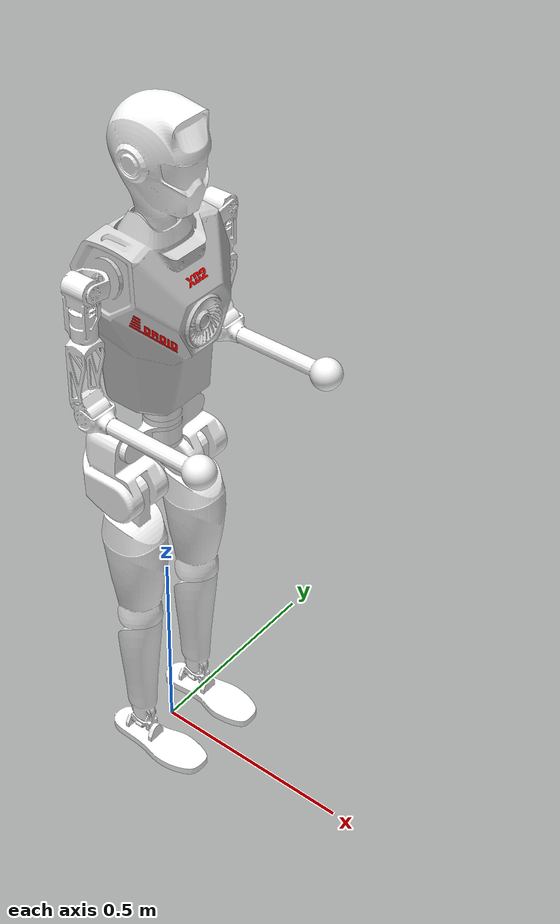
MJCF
<mujoco model="x2">
  <compiler angle="radian" meshdir="./meshes/"/>
  <default>
    <joint damping="0.1" armature="0.01" frictionloss="0.1"/>
  </default>
  <asset>
    <mesh name="pelvis_link" file="pelvis_link.STL"/>
    <mesh name="L_hip_yaw_link" file="L_hip_yaw_link.STL"/>
    <mesh name="L_hip_roll_link" file="L_hip_roll_link.STL"/>
    <mesh name="L_hip_pitch_link" file="L_hip_pitch_link.STL"/>
    <mesh name="L_knee_pitch_link" file="L_knee_pitch_link.STL"/>
    <mesh name="L_ankle_pitch_link" file="L_ankle_pitch_link.STL"/>
    <mesh name="R_hip_yaw_link" file="R_hip_yaw_link.STL"/>
    <mesh name="R_hip_roll_link" file="R_hip_roll_link.STL"/>
    <mesh name="R_hip_pitch_link" file="R_hip_pitch_link.STL"/>
    <mesh name="R_knee_pitch_link" file="R_knee_pitch_link.STL"/>
    <mesh name="R_ankle_pitch_link" file="R_ankle_pitch_link.STL"/>
    <mesh name="waist_yaw_link" file="waist_yaw_link.STL"/>
    <mesh name="torso_link" file="torso_link.STL"/>
    <mesh name="logo_link" file="logo_link.STL"/>
    <mesh name="head_link" file="head_link.STL"/>
    <mesh name="L_shoulder_pitch_link" file="L_shoulder_pitch_link.STL"/>
    <mesh name="L_shoulder_roll_link" file="L_shoulder_roll_link.STL"/>
    <mesh name="L_shoulder_yaw_link" file="L_shoulder_yaw_link.STL"/>
    <mesh name="L_elbow_pitch_link" file="L_elbow_pitch_link.STL"/>
    <mesh name="R_shoulder_pitch_link" file="R_shoulder_pitch_link.STL"/>
    <mesh name="R_shoulder_roll_link" file="R_shoulder_roll_link.STL"/>
    <mesh name="R_shoulder_yaw_link" file="R_shoulder_yaw_link.STL"/>
    <mesh name="R_elbow_pitch_link" file="R_elbow_pitch_link.STL"/>
  </asset>
  <worldbody>
    <light name="spotlight" target="pelvis_link" pos="0 0 2" dir="0 0 -1." cutoff="30" mode="targetbodycom"/>
    <body name="pelvis_link" pos="0 0 0.91">
      <site name="imu"/>
      <inertial pos="-0.000780925 -1.61312e-05 0.320098" quat="0.999982 -6.6303e-05 0.00594371 0.000195653" mass="14.8692" diaginertia="0.548526 0.426111 0.226041"/>
      <joint name="pelvis_link" type="free" limited="false" actuatorfrclimited="false"/>
      <geom type="mesh" contype="0" conaffinity="0" group="1" density="0" rgba="1 1 1 1" mesh="pelvis_link"/>
      <geom type="mesh" rgba="1 1 1 1" mesh="pelvis_link"/>
      <geom pos="0 0 0.08375" type="mesh" contype="0" conaffinity="0" group="1" density="0" rgba="1 1 1 1" mesh="waist_yaw_link"/>
      <geom pos="0 0 0.08375" type="mesh" rgba="1 1 1 1" mesh="waist_yaw_link"/>
      <geom pos="0 0 0.1205" type="mesh" contype="0" conaffinity="0" group="1" density="0" rgba="0.823529 0.823529 0.823529 1" mesh="torso_link"/>
      <geom pos="0 0 0.1205" type="mesh" rgba="0.823529 0.823529 0.823529 1" mesh="torso_link"/>
      <geom pos="0 0 0.1205" type="mesh" contype="0" conaffinity="0" group="1" density="0" rgba="1 0 0 1" mesh="logo_link"/>
      <geom pos="0 0 0.1205" type="mesh" rgba="1 0 0 1" mesh="logo_link"/>
      <geom pos="0 0 0.485" type="mesh" contype="0" conaffinity="0" group="1" density="0" rgba="1 1 1 1" mesh="head_link"/>
      <geom pos="0 0 0.485" type="mesh" rgba="1 1 1 1" mesh="head_link"/>
      <geom pos="-0.01 0.14477 0.43584" quat="0.996195 0.0871543 0 0" type="mesh" contype="0" conaffinity="0" group="1" density="0" rgba="1 1 1 1" mesh="L_shoulder_pitch_link"/>
      <geom pos="-0.01 0.14477 0.43584" quat="0.996195 0.0871543 0 0" type="mesh" rgba="1 1 1 1" mesh="L_shoulder_pitch_link"/>
      <geom pos="-0.01 0.204843 0.446432" type="mesh" contype="0" conaffinity="0" group="1" density="0" rgba="1 1 1 1" mesh="L_shoulder_roll_link"/>
      <geom pos="-0.01 0.204843 0.446432" type="mesh" rgba="1 1 1 1" mesh="L_shoulder_roll_link"/>
      <geom pos="-0.01 0.204843 0.334432" type="mesh" contype="0" conaffinity="0" group="1" density="0" rgba="1 1 1 1" mesh="L_shoulder_yaw_link"/>
      <geom pos="-0.01 0.204843 0.334432" type="mesh" rgba="1 1 1 1" mesh="L_shoulder_yaw_link"/>
      <geom pos="0 0.204843 0.161432" quat="0.707388 0 -0.706825 0" type="mesh" contype="0" conaffinity="0" group="1" density="0" rgba="1 1 1 1" mesh="L_elbow_pitch_link"/>
      <geom pos="0 0.204843 0.161432" quat="0.707388 0 -0.706825 0" type="mesh" rgba="1 1 1 1" mesh="L_elbow_pitch_link"/>
      <geom pos="-0.01 -0.14477 0.43584" quat="0.996195 -0.0871543 0 0" type="mesh" contype="0" conaffinity="0" group="1" density="0" rgba="1 1 1 1" mesh="R_shoulder_pitch_link"/>
      <geom pos="-0.01 -0.14477 0.43584" quat="0.996195 -0.0871543 0 0" type="mesh" rgba="1 1 1 1" mesh="R_shoulder_pitch_link"/>
      <geom pos="-0.01 -0.204843 0.446432" type="mesh" contype="0" conaffinity="0" group="1" density="0" rgba="1 1 1 1" mesh="R_shoulder_roll_link"/>
      <geom pos="-0.01 -0.204843 0.446432" type="mesh" rgba="1 1 1 1" mesh="R_shoulder_roll_link"/>
      <geom pos="-0.010039 -0.204843 0.334432" type="mesh" contype="0" conaffinity="0" group="1" density="0" rgba="1 1 1 1" mesh="R_shoulder_yaw_link"/>
      <geom pos="-0.010039 -0.204843 0.334432" type="mesh" rgba="1 1 1 1" mesh="R_shoulder_yaw_link"/>
      <geom pos="3.6e-08 -0.204843 0.161432" quat="0.707388 0 -0.706825 0" type="mesh" contype="0" conaffinity="0" group="1" density="0" rgba="1 1 1 1" mesh="R_elbow_pitch_link"/>
      <geom pos="3.6e-08 -0.204843 0.161432" quat="0.707388 0 -0.706825 0" type="mesh" rgba="1 1 1 1" mesh="R_elbow_pitch_link"/>
      <body name="L_hip_yaw_link">
        <inertial pos="-0.0005618 0.019831 0.00885104" quat="0.416547 0.491409 -0.566922 0.513426" mass="0.841" diaginertia="0.00175713 0.00175343 0.000573392"/>
        <joint name="L_hip_yaw" pos="0 0 0" axis="0 0 1" range="-0.7854 0.7854" actuatorfrcrange="-50 50"/>
        <geom type="mesh" contype="0" conaffinity="0" group="1" density="0" rgba="1 1 1 1" mesh="L_hip_yaw_link"/>
        <body name="L_hip_roll_link" pos="-0.0095 0.1 0">
          <inertial pos="-0.0324725 0.00017925 -0.0726484" quat="0.655395 -0.252501 -0.247695 0.667344" mass="2.667" diaginertia="0.0108627 0.0094793 0.00603247"/>
          <joint name="L_hip_roll" pos="0 0 0" axis="1 0 0" range="-0.349 0.524" actuatorfrcrange="-150 150"/>
          <geom type="mesh" contype="0" conaffinity="0" group="1" density="0" rgba="1 1 1 1" mesh="L_hip_roll_link"/>
          <body name="L_hip_pitch_link" pos="0.0085 -0.001 -0.11">
            <inertial pos="0.00382921 0 -0.185484" quat="0.706562 0.0278169 0.0278188 0.706557" mass="1.664" diaginertia="0.0148443 0.0145077 0.0030868"/>
            <joint name="L_hip_pitch" pos="0 0 0" axis="0 -1 0" range="-0.526 2.4434" actuatorfrcrange="-150 150"/>
            <geom type="mesh" contype="0" conaffinity="0" group="1" density="0" rgba="1 1 1 1" mesh="L_hip_pitch_link"/>
            <geom type="mesh" rgba="1 1 1 1" mesh="L_hip_pitch_link"/>
            <body name="L_knee_pitch_link" pos="0 0 -0.35">
              <inertial pos="0.00140265 0 -0.15876" quat="0.706958 -0.0143173 -0.0143148 0.706965" mass="1.125" diaginertia="0.00999859 0.00987345 0.00100926"/>
              <joint name="L_knee_pitch" pos="0 0 0" axis="0 -1 0" range="-2.3561 0" actuatorfrcrange="-150 150"/>
              <geom type="mesh" contype="0" conaffinity="0" group="1" density="0" rgba="1 1 1 1" mesh="L_knee_pitch_link"/>
              <geom type="mesh" rgba="1 1 1 1" mesh="L_knee_pitch_link"/>
              <body name="L_ankle_pitch_link" pos="0 0 -0.35">
                <inertial pos="0.0393988 -0.000237278 -0.0784143" quat="0 0.705556 0 0.708654" mass="0.556154" diaginertia="0.00260004 0.00215 0.000549961"/>
                <joint name="L_ankle_pitch" pos="0 0 0" axis="0 -1 0" range="-1.2217 1.2217" actuatorfrcrange="-50 50"/>
                <geom type="mesh" contype="0" conaffinity="0" group="1" density="0" rgba="1 1 1 1" mesh="L_ankle_pitch_link"/>
                <geom name="l_foot1" size="0.005" pos="-0.095 0 -0.087" rgba="1 1 1 1"/>
                <geom name="l_foot2" size="0.005" pos="-0.052 0.026 -0.087" rgba="1 1 1 1"/>
                <geom name="l_foot3" size="0.005" pos="-0.052 -0.028 -0.087" rgba="1 1 1 1"/>
                <geom name="l_foot4" size="0.005" pos="0.075 0.038 -0.087" rgba="1 1 1 1"/>
                <geom name="l_foot5" size="0.005" pos="0.075 -0.038 -0.087" rgba="1 1 1 1"/>
                <geom name="l_foot6" size="0.005" pos="0.136 0 -0.087" rgba="1 1 1 1"/>
                <site name="l_foot" pos="0 0 -0.087" />
              </body>
            </body>
          </body>
        </body>
      </body>
      <body name="R_hip_yaw_link">
        <inertial pos="-0.00116447 -0.0404495 0" quat="0.707002 0.707002 -0.0121739 -0.0121739" mass="0.219202" diaginertia="0.000598763 0.000555362 0.000156982"/>
        <joint name="R_hip_yaw" pos="0 0 0" axis="0 0 -1" range="-0.7854 0.7854" actuatorfrcrange="-50 50"/>
        <geom type="mesh" contype="0" conaffinity="0" group="1" density="0" rgba="1 1 1 1" mesh="R_hip_yaw_link"/>
        <body name="R_hip_roll_link" pos="-0.0095 -0.1 0">
          <inertial pos="-0.0324725 0.00017925 -0.0726484" quat="0.655395 -0.252501 -0.247695 0.667344" mass="2.667" diaginertia="0.0108627 0.0094793 0.00603247"/>
          <joint name="R_hip_roll" pos="0 0 0" axis="-1 0 0" range="-0.349 0.524" actuatorfrcrange="-150 150"/>
          <geom type="mesh" contype="0" conaffinity="0" group="1" density="0" rgba="1 1 1 1" mesh="R_hip_roll_link"/>
          <body name="R_hip_pitch_link" pos="0.0085 -0.001 -0.11">
            <inertial pos="0.00382921 0 -0.185485" quat="0.706557 0.0278188 0.0278169 0.706562" mass="1.664" diaginertia="0.0148443 0.0145077 0.0030868"/>
            <joint name="R_hip_pitch" pos="0 0 0" axis="0 -1 0" range="-0.526 2.4434" actuatorfrcrange="-150 150"/>
            <geom type="mesh" contype="0" conaffinity="0" group="1" density="0" rgba="1 1 1 1" mesh="R_hip_pitch_link"/>
            <geom type="mesh" rgba="1 1 1 1" mesh="R_hip_pitch_link"/>
            <body name="R_knee_pitch_link" pos="0 0 -0.35">
              <inertial pos="0.00140265 0 -0.15876" quat="0.706965 -0.0143148 -0.0143173 0.706958" mass="1.125" diaginertia="0.00999859 0.00987345 0.00100926"/>
              <joint name="R_knee_pitch" pos="0 0 0" axis="0 -1 0" range="-2.3561 0" actuatorfrcrange="-150 150"/>
              <geom type="mesh" contype="0" conaffinity="0" group="1" density="0" rgba="1 1 1 1" mesh="R_knee_pitch_link"/>
              <geom type="mesh" rgba="1 1 1 1" mesh="R_knee_pitch_link"/>
              <body name="R_ankle_pitch_link" pos="0 0 -0.35">
                <inertial pos="0.0393998 0.00023708 -0.0784145" quat="0 0.705556 0 0.708654" mass="0.556161" diaginertia="0.00260004 0.00215 0.000549961"/>
                <joint name="R_ankle_pitch" pos="0 0 0" axis="0 -1 0" range="-1.2217 1.2217" actuatorfrcrange="-50 50"/>
                <geom type="mesh" contype="0" conaffinity="0" group="1" density="0" rgba="1 1 1 1" mesh="R_ankle_pitch_link"/>
                <geom name="r_foot1" size="0.005" pos="-0.095 0 -0.087" rgba="1 1 1 1"/>
                <geom name="r_foot2" size="0.005" pos="-0.052 0.028 -0.087" rgba="1 1 1 1"/>
                <geom name="r_foot3" size="0.005" pos="-0.052 -0.026 -0.087" rgba="1 1 1 1"/>
                <geom name="r_foot4" size="0.005" pos="0.075 0.038 -0.087" rgba="1 1 1 1"/>
                <geom name="r_foot5" size="0.005" pos="0.075 -0.038 -0.087" rgba="1 1 1 1"/>
                <geom name="r_foot6" size="0.005" pos="0.136 0 -0.087" rgba="1 1 1 1"/>
                <site name="r_foot" pos="0 0 -0.087" />
              </body>
            </body>
          </body>
        </body>
      </body>
    </body>
  </worldbody>
  <actuator>
    <motor name="juL" joint="L_hip_yaw"       /> <!-- Leg Left -->
    <motor name="jsL" joint="L_hip_roll"      />
    <motor name="jhL" joint="L_hip_pitch"     />
    <motor name="jkL" joint="L_knee_pitch"    />
    <motor name="jpL" joint="L_ankle_pitch"   />

    <motor name="juR" joint="R_hip_yaw"       /> <!-- Leg Right -->
    <motor name="jsR" joint="R_hip_roll"      />
    <motor name="jhR" joint="R_hip_pitch"     />
    <motor name="jkR" joint="R_knee_pitch"    />
    <motor name="jpR" joint="R_ankle_pitch"   />
  </actuator>
  <sensor>
    <gyro site="imu" name="gyro"/>
    <velocimeter site="imu" name="local_linvel"/>
    <accelerometer site="imu" name="accelerometer"/>
    <framezaxis objtype="site" objname="imu" name="upvector"/>
    <framexaxis objtype="site" objname="imu" name="forwardvector"/>
    <framelinvel objtype="site" objname="imu" name="global_linvel"/>
    <frameangvel objtype="site" objname="imu" name="global_angvel"/>
    <framepos objtype="site" objname="imu" name="position"/>
    <framequat objtype="site" objname="imu" name="orientation"/>
    <framelinvel objtype="site" objname="l_foot" name="l_foot_global_linvel"/>
    <framelinvel objtype="site" objname="r_foot" name="r_foot_global_linvel"/>
    <framexaxis objtype="site" objname="l_foot" name="l_foot_upvector"/>
    <framexaxis objtype="site" objname="r_foot" name="r_foot_upvector"/>
    <framepos objtype="site" objname="l_foot" name="l_foot_pos"/>
    <framepos objtype="site" objname="r_foot" name="r_foot_pos"/>
  </sensor>
</mujoco>
